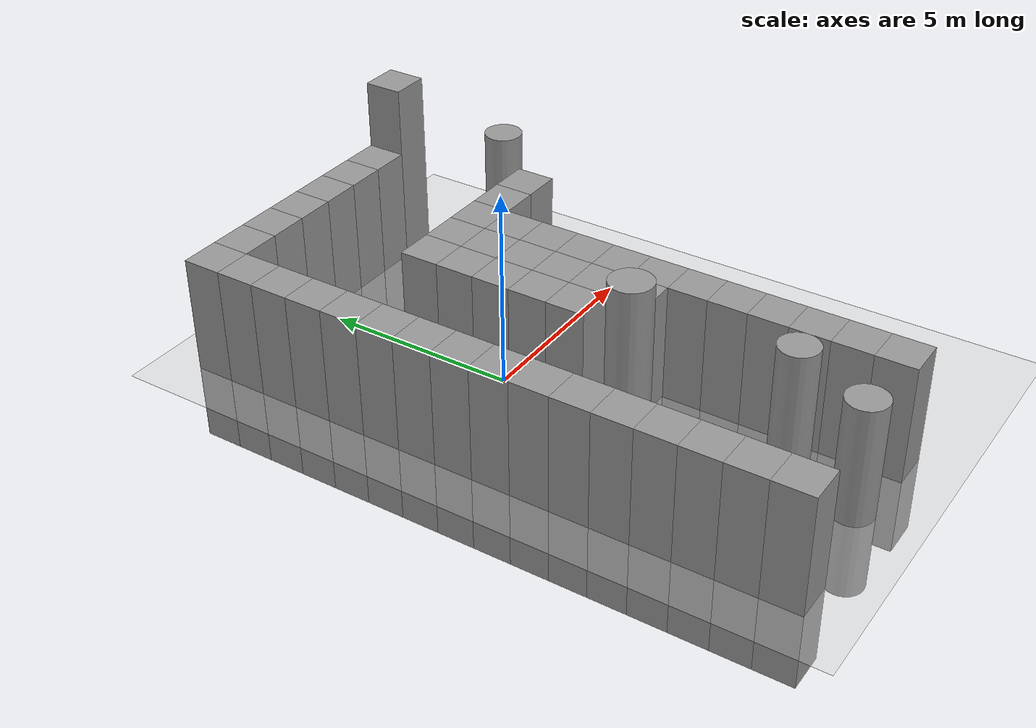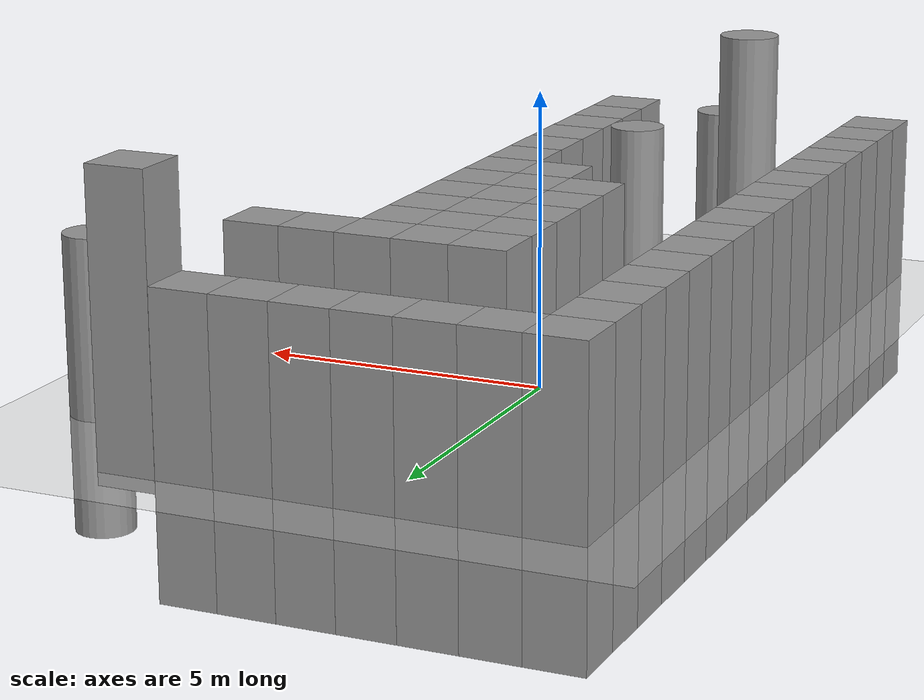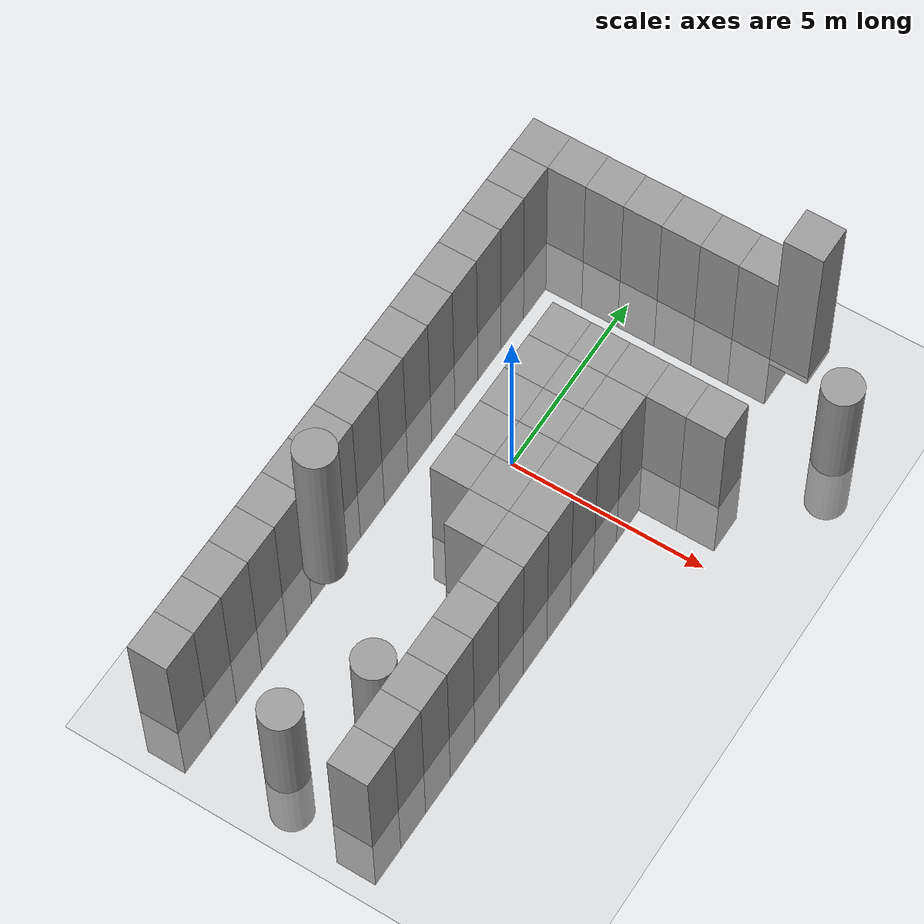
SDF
<sdf version="1.4">
 <world name="default">
  <light name="sun" type="directional">
   <pose>0 0 10 0 -0 0</pose>
   <diffuse>0.8 0.8 0.8 1</diffuse>
   <specular>0.2 0.2 0.2 1</specular>
   <attenuation>
    <range>1000</range>
    <constant>0.9</constant>
    <linear>0.01</linear>
    <quadratic>0.001</quadratic>
   </attenuation>
   <direction>-0.5 0.1 -0.9</direction>
  </light>
  <model name="ground_plane">
   <static>1</static>
   <link name="link">
    <collision name="collision">
     <geometry><plane><normal>0 0 1</normal><size>100 100</size></plane></geometry>
     <surface><friction><ode><mu>100</mu><mu2>50</mu2></ode></friction></surface>
    </collision>
    <visual name="visual">
     <cast_shadows>0</cast_shadows>
     <geometry><plane><normal>0 0 1</normal><size>100 100</size></plane></geometry>
     <material>
      <script><uri>file://media/materials/scripts/gazebo.material</uri><name>Gazebo/Grey</name></script>
     </material>
    </visual>
    <velocity_decay><linear>0</linear><angular>0</angular></velocity_decay>
   </link>
  </model>
  <physics type="ode">
   <max_step_size>0.001</max_step_size>
   <real_time_factor>1</real_time_factor>
   <real_time_update_rate>1000</real_time_update_rate>
   <gravity>0 0 -9.8</gravity>
  </physics>
  <scene><ambient>0.4 0.4 0.4 1</ambient><background>0.7 0.7 0.7 1</background><shadows>1</shadows></scene>
  <spherical_coordinates>
   <surface_model>EARTH_WGS84</surface_model>
   <latitude_deg>0</latitude_deg>
   <longitude_deg>0</longitude_deg>
   <elevation>0</elevation>
   <heading_deg>0</heading_deg>
  </spherical_coordinates>
  <model name="unit_box_1">
   <pose>-2.99993 -2 0.5 0 -0 2e-06</pose>
   <link name="link">
    <inertial>
     <mass>1000</mass>
     <inertia><ixx>1000</ixx><ixy>0</ixy><ixz>0</ixz><iyy>1000</iyy><iyz>0</iyz><izz>1000</izz></inertia>
    </inertial>
    <collision name="collision"><geometry><box><size>1 1 5</size></box></geometry></collision>
    <visual name="visual">
     <geometry><box><size>1 1 5</size></box></geometry>
     <material>
      <script><uri>file://media/materials/scripts/gazebo.material</uri><name>Gazebo/Grey</name></script>
     </material>
    </visual>
    <velocity_decay><linear>0</linear><angular>0</angular></velocity_decay>
   </link>
   <static>0</static>
  </model>
  <model name="unit_box_2">
   <pose>-2.99999 -1 0.5 0 -0 2e-06</pose>
   <link name="link">
    <inertial>
     <mass>1000</mass>
     <inertia><ixx>1000</ixx><ixy>0</ixy><ixz>0</ixz><iyy>1000</iyy><iyz>0</iyz><izz>1000</izz></inertia>
    </inertial>
    <collision name="collision"><geometry><box><size>1 1 5</size></box></geometry></collision>
    <visual name="visual">
     <geometry><box><size>1 1 5</size></box></geometry>
     <material>
      <script><uri>file://media/materials/scripts/gazebo.material</uri><name>Gazebo/Grey</name></script>
     </material>
    </visual>
    <velocity_decay><linear>0</linear><angular>0</angular></velocity_decay>
   </link>
   <static>0</static>
  </model>
  <model name="unit_box_3">
   <pose>-2.99998 -0 0.5 0 -0 2e-06</pose>
   <link name="link">
    <inertial>
     <mass>1000</mass>
     <inertia><ixx>1000</ixx><ixy>0</ixy><ixz>0</ixz><iyy>1000</iyy><iyz>0</iyz><izz>1000</izz></inertia>
    </inertial>
    <collision name="collision"><geometry><box><size>1 1 5</size></box></geometry></collision>
    <visual name="visual">
     <geometry><box><size>1 1 5</size></box></geometry>
     <material>
      <script><uri>file://media/materials/scripts/gazebo.material</uri><name>Gazebo/Grey</name></script>
     </material>
    </visual>
    <velocity_decay><linear>0</linear><angular>0</angular></velocity_decay>
   </link>
   <static>0</static>
  </model>
  <model name="unit_box_4">
   <pose>-2.99996 1 0.5 0 -0 2e-06</pose>
   <link name="link">
    <inertial>
     <mass>1000</mass>
     <inertia><ixx>1000</ixx><ixy>0</ixy><ixz>0</ixz><iyy>1000</iyy><iyz>0</iyz><izz>1000</izz></inertia>
    </inertial>
    <collision name="collision"><geometry><box><size>1 1 5</size></box></geometry></collision>
    <visual name="visual">
     <geometry><box><size>1 1 5</size></box></geometry>
     <material>
      <script><uri>file://media/materials/scripts/gazebo.material</uri><name>Gazebo/Grey</name></script>
     </material>
    </visual>
    <velocity_decay><linear>0</linear><angular>0</angular></velocity_decay>
   </link>
   <static>0</static>
  </model>
  <model name="unit_box_5">
   <pose>-2.99995 2 0.5 0 -0 2e-06</pose>
   <link name="link">
    <inertial>
     <mass>1000</mass>
     <inertia><ixx>1000</ixx><ixy>0</ixy><ixz>0</ixz><iyy>1000</iyy><iyz>0</iyz><izz>1000</izz></inertia>
    </inertial>
    <collision name="collision"><geometry><box><size>1 1 5</size></box></geometry></collision>
    <visual name="visual">
     <geometry><box><size>1 1 5</size></box></geometry>
     <material>
      <script><uri>file://media/materials/scripts/gazebo.material</uri><name>Gazebo/Grey</name></script>
     </material>
    </visual>
    <velocity_decay><linear>0</linear><angular>0</angular></velocity_decay>
   </link>
   <static>0</static>
  </model>
  <model name="unit_box_6">
   <pose>-2.99996 3 0.5 0 -0 2e-06</pose>
   <link name="link">
    <inertial>
     <mass>1000</mass>
     <inertia><ixx>1000</ixx><ixy>0</ixy><ixz>0</ixz><iyy>1000</iyy><iyz>0</iyz><izz>1000</izz></inertia>
    </inertial>
    <collision name="collision"><geometry><box><size>1 1 5</size></box></geometry></collision>
    <visual name="visual">
     <geometry><box><size>1 1 5</size></box></geometry>
     <material>
      <script><uri>file://media/materials/scripts/gazebo.material</uri><name>Gazebo/Grey</name></script>
     </material>
    </visual>
    <velocity_decay><linear>0</linear><angular>0</angular></velocity_decay>
   </link>
   <static>0</static>
  </model>
  <model name="unit_box_7">
   <pose>-2.99998 4 0.5 0 -0 1e-06</pose>
   <link name="link">
    <inertial>
     <mass>1000</mass>
     <inertia><ixx>1000</ixx><ixy>0</ixy><ixz>0</ixz><iyy>1000</iyy><iyz>0</iyz><izz>1000</izz></inertia>
    </inertial>
    <collision name="collision"><geometry><box><size>1 1 5</size></box></geometry></collision>
    <visual name="visual">
     <geometry><box><size>1 1 5</size></box></geometry>
     <material>
      <script><uri>file://media/materials/scripts/gazebo.material</uri><name>Gazebo/Grey</name></script>
     </material>
    </visual>
    <velocity_decay><linear>0</linear><angular>0</angular></velocity_decay>
   </link>
   <static>0</static>
  </model>
  <model name="unit_box_8">
   <pose>-2.99997 5.00001 0.5 0 0 -3e-06</pose>
   <link name="link">
    <inertial>
     <mass>1000</mass>
     <inertia><ixx>1000</ixx><ixy>0</ixy><ixz>0</ixz><iyy>1000</iyy><iyz>0</iyz><izz>1000</izz></inertia>
    </inertial>
    <collision name="collision"><geometry><box><size>1 1 5</size></box></geometry></collision>
    <visual name="visual">
     <geometry><box><size>1 1 5</size></box></geometry>
     <material>
      <script><uri>file://media/materials/scripts/gazebo.material</uri><name>Gazebo/Grey</name></script>
     </material>
    </visual>
    <velocity_decay><linear>0</linear><angular>0</angular></velocity_decay>
   </link>
   <static>0</static>
  </model>
  <model name="unit_box_10">
   <pose>-3.0001 6.00001 0.5 0 -0 -5e-06</pose>
   <link name="link">
    <inertial>
     <mass>1000</mass>
     <inertia><ixx>1000</ixx><ixy>0</ixy><ixz>0</ixz><iyy>1000</iyy><iyz>0</iyz><izz>1000</izz></inertia>
    </inertial>
    <collision name="collision"><geometry><box><size>1 1 5</size></box></geometry></collision>
    <visual name="visual">
     <geometry><box><size>1 1 5</size></box></geometry>
     <material>
      <script><uri>file://media/materials/scripts/gazebo.material</uri><name>Gazebo/Grey</name></script>
     </material>
    </visual>
    <velocity_decay><linear>0</linear><angular>0</angular></velocity_decay>
   </link>
   <static>0</static>
  </model>
  <model name="unit_box_11">
   <pose>-2.00009 6.00002 0.5 0 -0 -6e-06</pose>
   <link name="link">
    <inertial>
     <mass>1000</mass>
     <inertia><ixx>1000</ixx><ixy>0</ixy><ixz>0</ixz><iyy>1000</iyy><iyz>0</iyz><izz>1000</izz></inertia>
    </inertial>
    <collision name="collision"><geometry><box><size>1 1 5</size></box></geometry></collision>
    <visual name="visual">
     <geometry><box><size>1 1 5</size></box></geometry>
     <material>
      <script><uri>file://media/materials/scripts/gazebo.material</uri><name>Gazebo/Grey</name></script>
     </material>
    </visual>
    <velocity_decay><linear>0</linear><angular>0</angular></velocity_decay>
   </link>
   <static>0</static>
  </model>
  <model name="unit_box_12">
   <pose>-1.00009 6 0.5 -0 -0 -5e-06</pose>
   <link name="link">
    <inertial>
     <mass>1000</mass>
     <inertia><ixx>1000</ixx><ixy>0</ixy><ixz>0</ixz><iyy>1000</iyy><iyz>0</iyz><izz>1000</izz></inertia>
    </inertial>
    <collision name="collision"><geometry><box><size>1 1 5</size></box></geometry></collision>
    <visual name="visual">
     <geometry><box><size>1 1 5</size></box></geometry>
     <material>
      <script><uri>file://media/materials/scripts/gazebo.material</uri><name>Gazebo/Grey</name></script>
     </material>
    </visual>
    <velocity_decay><linear>0</linear><angular>0</angular></velocity_decay>
   </link>
   <static>0</static>
  </model>
  <model name="unit_box_13">
   <pose>-8.6e-05 6.00001 0.5 -0 -0 -1.8e-05</pose>
   <link name="link">
    <inertial>
     <mass>1000</mass>
     <inertia><ixx>1000</ixx><ixy>0</ixy><ixz>0</ixz><iyy>1000</iyy><iyz>0</iyz><izz>1000</izz></inertia>
    </inertial>
    <collision name="collision"><geometry><box><size>1 1 5</size></box></geometry></collision>
    <visual name="visual">
     <geometry><box><size>1 1 5</size></box></geometry>
     <material>
      <script><uri>file://media/materials/scripts/gazebo.material</uri><name>Gazebo/Grey</name></script>
     </material>
    </visual>
    <velocity_decay><linear>0</linear><angular>0</angular></velocity_decay>
   </link>
   <static>0</static>
  </model>
  <model name="unit_box_14">
   <pose>0.999921 6.00004 0.5 0 0 -3e-05</pose>
   <link name="link">
    <inertial>
     <mass>1000</mass>
     <inertia><ixx>1000</ixx><ixy>0</ixy><ixz>0</ixz><iyy>1000</iyy><iyz>0</iyz><izz>1000</izz></inertia>
    </inertial>
    <collision name="collision"><geometry><box><size>1 1 5</size></box></geometry></collision>
    <visual name="visual">
     <geometry><box><size>1 1 5</size></box></geometry>
     <material>
      <script><uri>file://media/materials/scripts/gazebo.material</uri><name>Gazebo/Grey</name></script>
     </material>
    </visual>
    <velocity_decay><linear>0</linear><angular>0</angular></velocity_decay>
   </link>
   <static>0</static>
  </model>
  <model name="unit_box_15">
   <pose>1.99994 6.00007 0.5 0 0 -3.1e-05</pose>
   <link name="link">
    <inertial>
     <mass>1000</mass>
     <inertia><ixx>1000</ixx><ixy>0</ixy><ixz>0</ixz><iyy>1000</iyy><iyz>0</iyz><izz>1000</izz></inertia>
    </inertial>
    <collision name="collision"><geometry><box><size>1 1 5</size></box></geometry></collision>
    <visual name="visual">
     <geometry><box><size>1 1 5</size></box></geometry>
     <material>
      <script><uri>file://media/materials/scripts/gazebo.material</uri><name>Gazebo/Grey</name></script>
     </material>
    </visual>
    <velocity_decay><linear>0</linear><angular>0</angular></velocity_decay>
   </link>
   <static>0</static>
  </model>
  <model name="unit_box_17">
   <pose>-3e-06 -2.00001 0.5 -0 -0 -1.7e-05</pose>
   <link name="link">
    <inertial>
     <mass>1000</mass>
     <inertia><ixx>1000</ixx><ixy>0</ixy><ixz>0</ixz><iyy>1000</iyy><iyz>0</iyz><izz>1000</izz></inertia>
    </inertial>
    <collision name="collision"><geometry><box><size>1 1 5</size></box></geometry></collision>
    <visual name="visual">
     <geometry><box><size>1 1 5</size></box></geometry>
     <material>
      <script><uri>file://media/materials/scripts/gazebo.material</uri><name>Gazebo/Grey</name></script>
     </material>
    </visual>
    <velocity_decay><linear>0</linear><angular>0</angular></velocity_decay>
   </link>
   <static>0</static>
  </model>
  <model name="unit_box_18">
   <pose>-5e-06 -1.00001 0.5 0 -0 -3e-06</pose>
   <link name="link">
    <inertial>
     <mass>1000</mass>
     <inertia><ixx>1000</ixx><ixy>0</ixy><ixz>0</ixz><iyy>1000</iyy><iyz>0</iyz><izz>1000</izz></inertia>
    </inertial>
    <collision name="collision"><geometry><box><size>1 1 5</size></box></geometry></collision>
    <visual name="visual">
     <geometry><box><size>1 1 5</size></box></geometry>
     <material>
      <script><uri>file://media/materials/scripts/gazebo.material</uri><name>Gazebo/Grey</name></script>
     </material>
    </visual>
    <velocity_decay><linear>0</linear><angular>0</angular></velocity_decay>
   </link>
   <static>0</static>
  </model>
  <model name="unit_box_19">
   <pose>-8e-06 -5e-06 0.5 -0 -0 -3e-06</pose>
   <link name="link">
    <inertial>
     <mass>1000</mass>
     <inertia><ixx>1000</ixx><ixy>0</ixy><ixz>0</ixz><iyy>1000</iyy><iyz>0</iyz><izz>1000</izz></inertia>
    </inertial>
    <collision name="collision"><geometry><box><size>1 1 5</size></box></geometry></collision>
    <visual name="visual">
     <geometry><box><size>1 1 5</size></box></geometry>
     <material>
      <script><uri>file://media/materials/scripts/gazebo.material</uri><name>Gazebo/Grey</name></script>
     </material>
    </visual>
    <velocity_decay><linear>0</linear><angular>0</angular></velocity_decay>
   </link>
   <static>0</static>
  </model>
  <model name="unit_box_20">
   <pose>-9e-06 0.999998 0.5 0 0 -3e-06</pose>
   <link name="link">
    <inertial>
     <mass>1000</mass>
     <inertia><ixx>1000</ixx><ixy>0</ixy><ixz>0</ixz><iyy>1000</iyy><iyz>0</iyz><izz>1000</izz></inertia>
    </inertial>
    <collision name="collision"><geometry><box><size>1 1 5</size></box></geometry></collision>
    <visual name="visual">
     <geometry><box><size>1 1 5</size></box></geometry>
     <material>
      <script><uri>file://media/materials/scripts/gazebo.material</uri><name>Gazebo/Grey</name></script>
     </material>
    </visual>
    <velocity_decay><linear>0</linear><angular>0</angular></velocity_decay>
   </link>
   <static>0</static>
  </model>
  <model name="unit_box_21">
   <pose>-2e-06 2.00001 0.5 0 0 -2e-06</pose>
   <link name="link">
    <inertial>
     <mass>1000</mass>
     <inertia><ixx>1000</ixx><ixy>0</ixy><ixz>0</ixz><iyy>1000</iyy><iyz>0</iyz><izz>1000</izz></inertia>
    </inertial>
    <collision name="collision"><geometry><box><size>1 1 5</size></box></geometry></collision>
    <visual name="visual">
     <geometry><box><size>1 1 5</size></box></geometry>
     <material>
      <script><uri>file://media/materials/scripts/gazebo.material</uri><name>Gazebo/Grey</name></script>
     </material>
    </visual>
    <velocity_decay><linear>0</linear><angular>0</angular></velocity_decay>
   </link>
   <static>0</static>
  </model>
  <model name="unit_box_22">
   <pose>1 2.00001 0.5 -0 -0 -3e-06</pose>
   <link name="link">
    <inertial>
     <mass>1000</mass>
     <inertia><ixx>1000</ixx><ixy>0</ixy><ixz>0</ixz><iyy>1000</iyy><iyz>0</iyz><izz>1000</izz></inertia>
    </inertial>
    <collision name="collision"><geometry><box><size>1 1 5</size></box></geometry></collision>
    <visual name="visual">
     <geometry><box><size>1 1 5</size></box></geometry>
     <material>
      <script><uri>file://media/materials/scripts/gazebo.material</uri><name>Gazebo/Grey</name></script>
     </material>
    </visual>
    <velocity_decay><linear>0</linear><angular>0</angular></velocity_decay>
   </link>
   <static>0</static>
  </model>
  <model name="unit_box_23">
   <pose>2 2.00001 0.5 0 -0 -2e-06</pose>
   <link name="link">
    <inertial>
     <mass>1000</mass>
     <inertia><ixx>1000</ixx><ixy>0</ixy><ixz>0</ixz><iyy>1000</iyy><iyz>0</iyz><izz>1000</izz></inertia>
    </inertial>
    <collision name="collision"><geometry><box><size>1 1 5</size></box></geometry></collision>
    <visual name="visual">
     <geometry><box><size>1 1 5</size></box></geometry>
     <material>
      <script><uri>file://media/materials/scripts/gazebo.material</uri><name>Gazebo/Grey</name></script>
     </material>
    </visual>
    <velocity_decay><linear>0</linear><angular>0</angular></velocity_decay>
   </link>
   <static>0</static>
  </model>
  <model name="unit_box_24">
   <pose>3.00001 2 0.5 -0 -0 -0</pose>
   <link name="link">
    <inertial>
     <mass>1000</mass>
     <inertia><ixx>1000</ixx><ixy>0</ixy><ixz>0</ixz><iyy>1000</iyy><iyz>0</iyz><izz>1000</izz></inertia>
    </inertial>
    <collision name="collision"><geometry><box><size>1 1 5</size></box></geometry></collision>
    <visual name="visual">
     <geometry><box><size>1 1 5</size></box></geometry>
     <material>
      <script><uri>file://media/materials/scripts/gazebo.material</uri><name>Gazebo/Grey</name></script>
     </material>
    </visual>
    <velocity_decay><linear>0</linear><angular>0</angular></velocity_decay>
   </link>
   <static>0</static>
  </model>
  <model name="unit_box_25">
   <pose>-2.99996 -3.00001 0.5 0 -0 2e-06</pose>
   <link name="link">
    <inertial>
     <mass>1000</mass>
     <inertia><ixx>1000</ixx><ixy>0</ixy><ixz>0</ixz><iyy>1000</iyy><iyz>0</iyz><izz>1000</izz></inertia>
    </inertial>
    <collision name="collision"><geometry><box><size>1 1 5</size></box></geometry></collision>
    <visual name="visual">
     <geometry><box><size>1 1 5</size></box></geometry>
     <material>
      <script><uri>file://media/materials/scripts/gazebo.material</uri><name>Gazebo/Grey</name></script>
     </material>
    </visual>
    <velocity_decay><linear>0</linear><angular>0</angular></velocity_decay>
   </link>
   <static>0</static>
  </model>
  <model name="unit_box_27">
   <pose>-2.99997 -4.00001 0.5 0 -0 3e-06</pose>
   <link name="link">
    <inertial>
     <mass>1000</mass>
     <inertia><ixx>1000</ixx><ixy>0</ixy><ixz>0</ixz><iyy>1000</iyy><iyz>0</iyz><izz>1000</izz></inertia>
    </inertial>
    <collision name="collision"><geometry><box><size>1 1 5</size></box></geometry></collision>
    <visual name="visual">
     <geometry><box><size>1 1 5</size></box></geometry>
     <material>
      <script><uri>file://media/materials/scripts/gazebo.material</uri><name>Gazebo/Grey</name></script>
     </material>
    </visual>
    <velocity_decay><linear>0</linear><angular>0</angular></velocity_decay>
   </link>
   <static>0</static>
  </model>
  <model name="unit_box_28">
   <pose>-2.99997 -5.00001 0.5 0 -0 4e-06</pose>
   <link name="link">
    <inertial>
     <mass>1000</mass>
     <inertia><ixx>1000</ixx><ixy>0</ixy><ixz>0</ixz><iyy>1000</iyy><iyz>0</iyz><izz>1000</izz></inertia>
    </inertial>
    <collision name="collision"><geometry><box><size>1 1 5</size></box></geometry></collision>
    <visual name="visual">
     <geometry><box><size>1 1 5</size></box></geometry>
     <material>
      <script><uri>file://media/materials/scripts/gazebo.material</uri><name>Gazebo/Grey</name></script>
     </material>
    </visual>
    <velocity_decay><linear>0</linear><angular>0</angular></velocity_decay>
   </link>
   <static>0</static>
  </model>
  <model name="unit_cylinder_1">
   <pose>-1.99995 -4.50684 2.83734 0 -0 7e-06</pose>
   <link name="link">
    <inertial>
     <mass>1000</mass>
     <inertia><ixx>1000</ixx><ixy>0</ixy><ixz>0</ixz><iyy>1000</iyy><iyz>0</iyz><izz>1000</izz></inertia>
    </inertial>
    <collision name="collision">
     <geometry><cylinder><radius>0.5</radius><length>5.6747</length></cylinder></geometry>
    </collision>
    <visual name="visual">
     <geometry><cylinder><radius>0.5</radius><length>5</length></cylinder></geometry>
     <material>
      <script><uri>file://media/materials/scripts/gazebo.material</uri><name>Gazebo/Grey</name></script>
     </material>
    </visual>
    <velocity_decay><linear>0</linear><angular>0</angular></velocity_decay>
   </link>
   <static>0</static>
  </model>
  <model name="unit_box_29">
   <pose>0.999993 -3 0.5 0 -0 1e-06</pose>
   <link name="link">
    <inertial>
     <mass>1000</mass>
     <inertia><ixx>1000</ixx><ixy>0</ixy><ixz>0</ixz><iyy>1000</iyy><iyz>0</iyz><izz>1000</izz></inertia>
    </inertial>
    <collision name="collision"><geometry><box><size>1 1 5</size></box></geometry></collision>
    <visual name="visual">
     <geometry><box><size>1 1 5</size></box></geometry>
     <material>
      <script><uri>file://media/materials/scripts/gazebo.material</uri><name>Gazebo/Grey</name></script>
     </material>
    </visual>
    <velocity_decay><linear>0</linear><angular>0</angular></velocity_decay>
   </link>
   <static>0</static>
  </model>
  <model name="unit_box_30">
   <pose>1.99998 -4 0.5 0 -0 1e-06</pose>
   <link name="link">
    <inertial>
     <mass>1000</mass>
     <inertia><ixx>1000</ixx><ixy>0</ixy><ixz>0</ixz><iyy>1000</iyy><iyz>0</iyz><izz>1000</izz></inertia>
    </inertial>
    <collision name="collision"><geometry><box><size>1 1 5</size></box></geometry></collision>
    <visual name="visual">
     <geometry><box><size>1 1 5</size></box></geometry>
     <material>
      <script><uri>file://media/materials/scripts/gazebo.material</uri><name>Gazebo/Grey</name></script>
     </material>
    </visual>
    <velocity_decay><linear>0</linear><angular>0</angular></velocity_decay>
   </link>
   <static>0</static>
  </model>
  <model name="unit_box_31">
   <pose>2.00001 -5 0.5 0 -0 2e-06</pose>
   <link name="link">
    <inertial>
     <mass>1000</mass>
     <inertia><ixx>1000</ixx><ixy>0</ixy><ixz>0</ixz><iyy>1000</iyy><iyz>0</iyz><izz>1000</izz></inertia>
    </inertial>
    <collision name="collision"><geometry><box><size>1 1 5</size></box></geometry></collision>
    <visual name="visual">
     <geometry><box><size>1 1 5</size></box></geometry>
     <material>
      <script><uri>file://media/materials/scripts/gazebo.material</uri><name>Gazebo/Grey</name></script>
     </material>
    </visual>
    <velocity_decay><linear>0</linear><angular>0</angular></velocity_decay>
   </link>
   <static>0</static>
  </model>
  <model name="unit_box_32">
   <pose>1.99999 -6 0.5 0 -0 2e-06</pose>
   <link name="link">
    <inertial>
     <mass>1000</mass>
     <inertia><ixx>1000</ixx><ixy>0</ixy><ixz>0</ixz><iyy>1000</iyy><iyz>0</iyz><izz>1000</izz></inertia>
    </inertial>
    <collision name="collision"><geometry><box><size>1 1 5</size></box></geometry></collision>
    <visual name="visual">
     <geometry><box><size>1 1 5</size></box></geometry>
     <material>
      <script><uri>file://media/materials/scripts/gazebo.material</uri><name>Gazebo/Grey</name></script>
     </material>
    </visual>
    <velocity_decay><linear>0</linear><angular>0</angular></velocity_decay>
   </link>
   <static>0</static>
  </model>
  <model name="unit_box_33">
   <pose>-3 -6.00001 0.5 0 -0 4e-06</pose>
   <link name="link">
    <inertial>
     <mass>1000</mass>
     <inertia><ixx>1000</ixx><ixy>0</ixy><ixz>0</ixz><iyy>1000</iyy><iyz>0</iyz><izz>1000</izz></inertia>
    </inertial>
    <collision name="collision"><geometry><box><size>1 1 5</size></box></geometry></collision>
    <visual name="visual">
     <geometry><box><size>1 1 5</size></box></geometry>
     <material>
      <script><uri>file://media/materials/scripts/gazebo.material</uri><name>Gazebo/Grey</name></script>
     </material>
    </visual>
    <velocity_decay><linear>0</linear><angular>0</angular></velocity_decay>
   </link>
   <static>0</static>
  </model>
  <model name="unit_box_34">
   <pose>2 -7.00001 0.5 0 -0 1e-06</pose>
   <link name="link">
    <inertial>
     <mass>1000</mass>
     <inertia><ixx>1000</ixx><ixy>0</ixy><ixz>0</ixz><iyy>1000</iyy><iyz>0</iyz><izz>1000</izz></inertia>
    </inertial>
    <collision name="collision"><geometry><box><size>1 1 5</size></box></geometry></collision>
    <visual name="visual">
     <geometry><box><size>1 1 5</size></box></geometry>
     <material>
      <script><uri>file://media/materials/scripts/gazebo.material</uri><name>Gazebo/Grey</name></script>
     </material>
    </visual>
    <velocity_decay><linear>0</linear><angular>0</angular></velocity_decay>
   </link>
   <static>0</static>
  </model>
  <model name="unit_box_35">
   <pose>-2.99998 -7.00001 0.5 0 -0 4e-06</pose>
   <link name="link">
    <inertial>
     <mass>1000</mass>
     <inertia><ixx>1000</ixx><ixy>0</ixy><ixz>0</ixz><iyy>1000</iyy><iyz>0</iyz><izz>1000</izz></inertia>
    </inertial>
    <collision name="collision"><geometry><box><size>1 1 5</size></box></geometry></collision>
    <visual name="visual">
     <geometry><box><size>1 1 5</size></box></geometry>
     <material>
      <script><uri>file://media/materials/scripts/gazebo.material</uri><name>Gazebo/Grey</name></script>
     </material>
    </visual>
    <velocity_decay><linear>0</linear><angular>0</angular></velocity_decay>
   </link>
   <static>0</static>
  </model>
  <model name="unit_cylinder_2">
   <pose>0.999994 -7 0.499996 -0 -0 -0</pose>
   <link name="link">
    <inertial>
     <mass>1000</mass>
     <inertia><ixx>1000</ixx><ixy>0</ixy><ixz>0</ixz><iyy>1000</iyy><iyz>0</iyz><izz>1000</izz></inertia>
    </inertial>
    <collision name="collision">
     <geometry><cylinder><radius>0.5</radius><length>5</length></cylinder></geometry>
    </collision>
    <visual name="visual">
     <geometry><cylinder><radius>0.5</radius><length>5</length></cylinder></geometry>
     <material>
      <script><uri>file://media/materials/scripts/gazebo.material</uri><name>Gazebo/Grey</name></script>
     </material>
    </visual>
    <velocity_decay><linear>0</linear><angular>0</angular></velocity_decay>
   </link>
   <static>0</static>
  </model>
  <model name="unit_cylinder_3">
   <pose>-0 -9 0.499992 0 -0 0</pose>
   <link name="link">
    <inertial>
     <mass>1000</mass>
     <inertia><ixx>1000</ixx><ixy>0</ixy><ixz>0</ixz><iyy>1000</iyy><iyz>0</iyz><izz>1000</izz></inertia>
    </inertial>
    <collision name="collision">
     <geometry><cylinder><radius>0.5</radius><length>5</length></cylinder></geometry>
    </collision>
    <visual name="visual">
     <geometry><cylinder><radius>0.5</radius><length>5</length></cylinder></geometry>
     <material>
      <script><uri>file://media/materials/scripts/gazebo.material</uri><name>Gazebo/Grey</name></script>
     </material>
    </visual>
    <velocity_decay><linear>0</linear><angular>0</angular></velocity_decay>
   </link>
   <static>0</static>
  </model>
  <model name="unit_box_36">
   <pose>2 -8.00001 0.5 0 0 -2e-06</pose>
   <link name="link">
    <inertial>
     <mass>1000</mass>
     <inertia><ixx>1000</ixx><ixy>0</ixy><ixz>0</ixz><iyy>1000</iyy><iyz>0</iyz><izz>1000</izz></inertia>
    </inertial>
    <collision name="collision"><geometry><box><size>1 1 5</size></box></geometry></collision>
    <visual name="visual">
     <geometry><box><size>1 1 5</size></box></geometry>
     <material>
      <script><uri>file://media/materials/scripts/gazebo.material</uri><name>Gazebo/Grey</name></script>
     </material>
    </visual>
    <velocity_decay><linear>0</linear><angular>0</angular></velocity_decay>
   </link>
   <static>0</static>
  </model>
  <model name="unit_box_37">
   <pose>2 -9.00001 0.5 0 -0 -2e-06</pose>
   <link name="link">
    <inertial>
     <mass>1000</mass>
     <inertia><ixx>1000</ixx><ixy>0</ixy><ixz>0</ixz><iyy>1000</iyy><iyz>0</iyz><izz>1000</izz></inertia>
    </inertial>
    <collision name="collision"><geometry><box><size>1 1 5</size></box></geometry></collision>
    <visual name="visual">
     <geometry><box><size>1 1 5</size></box></geometry>
     <material>
      <script><uri>file://media/materials/scripts/gazebo.material</uri><name>Gazebo/Grey</name></script>
     </material>
    </visual>
    <velocity_decay><linear>0</linear><angular>0</angular></velocity_decay>
   </link>
   <static>0</static>
  </model>
  <model name="unit_box_38">
   <pose>-2.99998 -8.00001 0.5 0 -0 3e-06</pose>
   <link name="link">
    <inertial>
     <mass>1000</mass>
     <inertia><ixx>1000</ixx><ixy>0</ixy><ixz>0</ixz><iyy>1000</iyy><iyz>0</iyz><izz>1000</izz></inertia>
    </inertial>
    <collision name="collision"><geometry><box><size>1 1 5</size></box></geometry></collision>
    <visual name="visual">
     <geometry><box><size>1 1 5</size></box></geometry>
     <material>
      <script><uri>file://media/materials/scripts/gazebo.material</uri><name>Gazebo/Grey</name></script>
     </material>
    </visual>
    <velocity_decay><linear>0</linear><angular>0</angular></velocity_decay>
   </link>
   <static>0</static>
  </model>
  <model name="unit_box_39">
   <pose>-3 -9.00001 0.5 0 -0 3e-06</pose>
   <link name="link">
    <inertial>
     <mass>1000</mass>
     <inertia><ixx>1000</ixx><ixy>0</ixy><ixz>0</ixz><iyy>1000</iyy><iyz>0</iyz><izz>1000</izz></inertia>
    </inertial>
    <collision name="collision"><geometry><box><size>1 1 5</size></box></geometry></collision>
    <visual name="visual">
     <geometry><box><size>1 1 5</size></box></geometry>
     <material>
      <script><uri>file://media/materials/scripts/gazebo.material</uri><name>Gazebo/Grey</name></script>
     </material>
    </visual>
    <velocity_decay><linear>0</linear><angular>0</angular></velocity_decay>
   </link>
   <static>0</static>
  </model>
  <model name="unit_box_40">
   <pose>0.999999 1.00001 0.5 -0 -0 -2e-06</pose>
   <link name="link">
    <inertial>
     <mass>1000</mass>
     <inertia><ixx>1000</ixx><ixy>0</ixy><ixz>0</ixz><iyy>1000</iyy><iyz>0</iyz><izz>1000</izz></inertia>
    </inertial>
    <collision name="collision"><geometry><box><size>1 1 5</size></box></geometry></collision>
    <visual name="visual">
     <geometry><box><size>1 1 5</size></box></geometry>
     <material>
      <script><uri>file://media/materials/scripts/gazebo.material</uri><name>Gazebo/Grey</name></script>
     </material>
    </visual>
    <velocity_decay><linear>0</linear><angular>0</angular></velocity_decay>
   </link>
   <static>0</static>
  </model>
  <model name="unit_box_41">
   <pose>0.999999 6e-06 0.5 0 0 -1e-06</pose>
   <link name="link">
    <inertial>
     <mass>1000</mass>
     <inertia><ixx>1000</ixx><ixy>0</ixy><ixz>0</ixz><iyy>1000</iyy><iyz>0</iyz><izz>1000</izz></inertia>
    </inertial>
    <collision name="collision"><geometry><box><size>1 1 5</size></box></geometry></collision>
    <visual name="visual">
     <geometry><box><size>1 1 5</size></box></geometry>
     <material>
      <script><uri>file://media/materials/scripts/gazebo.material</uri><name>Gazebo/Grey</name></script>
     </material>
    </visual>
    <velocity_decay><linear>0</linear><angular>0</angular></velocity_decay>
   </link>
   <static>0</static>
  </model>
  <model name="unit_box_42">
   <pose>1 -0.999996 0.5 0 -0 -2e-06</pose>
   <link name="link">
    <inertial>
     <mass>1000</mass>
     <inertia><ixx>1000</ixx><ixy>0</ixy><ixz>0</ixz><iyy>1000</iyy><iyz>0</iyz><izz>1000</izz></inertia>
    </inertial>
    <collision name="collision"><geometry><box><size>1 1 5</size></box></geometry></collision>
    <visual name="visual">
     <geometry><box><size>1 1 5</size></box></geometry>
     <material>
      <script><uri>file://media/materials/scripts/gazebo.material</uri><name>Gazebo/Grey</name></script>
     </material>
    </visual>
    <velocity_decay><linear>0</linear><angular>0</angular></velocity_decay>
   </link>
   <static>0</static>
  </model>
  <model name="unit_box_43">
   <pose>1.00002 -2 0.5 0 0 -1e-06</pose>
   <link name="link">
    <inertial>
     <mass>1000</mass>
     <inertia><ixx>1000</ixx><ixy>0</ixy><ixz>0</ixz><iyy>1000</iyy><iyz>0</iyz><izz>1000</izz></inertia>
    </inertial>
    <collision name="collision"><geometry><box><size>1 1 5</size></box></geometry></collision>
    <visual name="visual">
     <geometry><box><size>1 1 5</size></box></geometry>
     <material>
      <script><uri>file://media/materials/scripts/gazebo.material</uri><name>Gazebo/Grey</name></script>
     </material>
    </visual>
    <velocity_decay><linear>0</linear><angular>0</angular></velocity_decay>
   </link>
   <static>0</static>
  </model>
  <model name="unit_box_44">
   <pose>1.99999 -3 0.5 0 -0 0</pose>
   <link name="link">
    <inertial>
     <mass>1000</mass>
     <inertia><ixx>1000</ixx><ixy>0</ixy><ixz>0</ixz><iyy>1000</iyy><iyz>0</iyz><izz>1000</izz></inertia>
    </inertial>
    <collision name="collision"><geometry><box><size>1 1 5</size></box></geometry></collision>
    <visual name="visual">
     <geometry><box><size>1 1 5</size></box></geometry>
     <material>
      <script><uri>file://media/materials/scripts/gazebo.material</uri><name>Gazebo/Grey</name></script>
     </material>
    </visual>
    <velocity_decay><linear>0</linear><angular>0</angular></velocity_decay>
   </link>
   <static>0</static>
  </model>
  <model name="unit_box_45">
   <pose>2.00002 -2 0.5 0 0 -2e-06</pose>
   <link name="link">
    <inertial>
     <mass>1000</mass>
     <inertia><ixx>1000</ixx><ixy>0</ixy><ixz>0</ixz><iyy>1000</iyy><iyz>0</iyz><izz>1000</izz></inertia>
    </inertial>
    <collision name="collision"><geometry><box><size>1 1 5</size></box></geometry></collision>
    <visual name="visual">
     <geometry><box><size>1 1 5</size></box></geometry>
     <material>
      <script><uri>file://media/materials/scripts/gazebo.material</uri><name>Gazebo/Grey</name></script>
     </material>
    </visual>
    <velocity_decay><linear>0</linear><angular>0</angular></velocity_decay>
   </link>
   <static>0</static>
  </model>
  <model name="unit_box_46">
   <pose>2 -0.999997 0.5 0 0 -3e-06</pose>
   <link name="link">
    <inertial>
     <mass>1000</mass>
     <inertia><ixx>1000</ixx><ixy>0</ixy><ixz>0</ixz><iyy>1000</iyy><iyz>0</iyz><izz>1000</izz></inertia>
    </inertial>
    <collision name="collision"><geometry><box><size>1 1 5</size></box></geometry></collision>
    <visual name="visual">
     <geometry><box><size>1 1 5</size></box></geometry>
     <material>
      <script><uri>file://media/materials/scripts/gazebo.material</uri><name>Gazebo/Grey</name></script>
     </material>
    </visual>
    <velocity_decay><linear>0</linear><angular>0</angular></velocity_decay>
   </link>
   <static>0</static>
  </model>
  <model name="unit_box_47">
   <pose>2.00001 5e-06 0.5 0 0 -1e-06</pose>
   <link name="link">
    <inertial>
     <mass>1000</mass>
     <inertia><ixx>1000</ixx><ixy>0</ixy><ixz>0</ixz><iyy>1000</iyy><iyz>0</iyz><izz>1000</izz></inertia>
    </inertial>
    <collision name="collision"><geometry><box><size>1 1 5</size></box></geometry></collision>
    <visual name="visual">
     <geometry><box><size>1 1 5</size></box></geometry>
     <material>
      <script><uri>file://media/materials/scripts/gazebo.material</uri><name>Gazebo/Grey</name></script>
     </material>
    </visual>
    <velocity_decay><linear>0</linear><angular>0</angular></velocity_decay>
   </link>
   <static>0</static>
  </model>
  <model name="unit_box_48">
   <pose>2.00001 1.00001 0.5 0 0 -2e-06</pose>
   <link name="link">
    <inertial>
     <mass>1000</mass>
     <inertia><ixx>1000</ixx><ixy>0</ixy><ixz>0</ixz><iyy>1000</iyy><iyz>0</iyz><izz>1000</izz></inertia>
    </inertial>
    <collision name="collision"><geometry><box><size>1 1 5</size></box></geometry></collision>
    <visual name="visual">
     <geometry><box><size>1 1 5</size></box></geometry>
     <material>
      <script><uri>file://media/materials/scripts/gazebo.material</uri><name>Gazebo/Grey</name></script>
     </material>
    </visual>
    <velocity_decay><linear>0</linear><angular>0</angular></velocity_decay>
   </link>
   <static>0</static>
  </model>
  <model name="unit_box_49">
   <pose>4.00002 2 0.5 -0 -0 -0</pose>
   <link name="link">
    <inertial>
     <mass>1000</mass>
     <inertia><ixx>1000</ixx><ixy>0</ixy><ixz>0</ixz><iyy>1000</iyy><iyz>0</iyz><izz>1000</izz></inertia>
    </inertial>
    <collision name="collision"><geometry><box><size>1 1 5</size></box></geometry></collision>
    <visual name="visual">
     <geometry><box><size>1 1 5</size></box></geometry>
     <material>
      <script><uri>file://media/materials/scripts/gazebo.material</uri><name>Gazebo/Grey</name></script>
     </material>
    </visual>
    <velocity_decay><linear>0</linear><angular>0</angular></velocity_decay>
   </link>
   <static>0</static>
  </model>
  <model name="unit_box_50">
   <pose>4.00062 6.00057 2.26609 0 -1e-06 -0.000917</pose>
   <link name="link">
    <inertial>
     <mass>1000</mass>
     <inertia><ixx>1000</ixx><ixy>0</ixy><ixz>0</ixz><iyy>1000</iyy><iyz>0</iyz><izz>1000</izz></inertia>
    </inertial>
    <collision name="collision"><geometry><box><size>1 1 4.53219</size></box></geometry></collision>
    <visual name="visual">
     <geometry><box><size>1 1 5</size></box></geometry>
     <material>
      <script><uri>file://media/materials/scripts/gazebo.material</uri><name>Gazebo/Grey</name></script>
     </material>
    </visual>
    <velocity_decay><linear>0</linear><angular>0</angular></velocity_decay>
   </link>
   <static>0</static>
  </model>
  <model name="unit_cylinder_4">
   <pose>6 4 0.499998 1e-06 -0 0</pose>
   <link name="link">
    <inertial>
     <mass>1000</mass>
     <inertia><ixx>1000</ixx><ixy>0</ixy><ixz>0</ixz><iyy>1000</iyy><iyz>0</iyz><izz>1000</izz></inertia>
    </inertial>
    <collision name="collision">
     <geometry><cylinder><radius>0.5</radius><length>5</length></cylinder></geometry>
    </collision>
    <visual name="visual">
     <geometry><cylinder><radius>0.5</radius><length>5</length></cylinder></geometry>
     <material>
      <script><uri>file://media/materials/scripts/gazebo.material</uri><name>Gazebo/Grey</name></script>
     </material>
    </visual>
    <velocity_decay><linear>0</linear><angular>0</angular></velocity_decay>
   </link>
   <static>0</static>
  </model>
  <model name="unit_box_52">
   <pose>3 6 0.5 0 -0 0</pose>
   <link name="link">
    <inertial>
     <mass>1000</mass>
     <inertia><ixx>1000</ixx><ixy>0</ixy><ixz>0</ixz><iyy>1000</iyy><iyz>0</iyz><izz>1000</izz></inertia>
    </inertial>
    <collision name="collision"><geometry><box><size>1 1 5</size></box></geometry></collision>
    <visual name="visual">
     <geometry><box><size>1 1 5</size></box></geometry>
     <material>
      <script><uri>file://media/materials/scripts/gazebo.material</uri><name>Gazebo/Grey</name></script>
     </material>
    </visual>
    <velocity_decay><linear>0</linear><angular>0</angular></velocity_decay>
   </link>
   <static>0</static>
  </model>
 </world>
</sdf>
